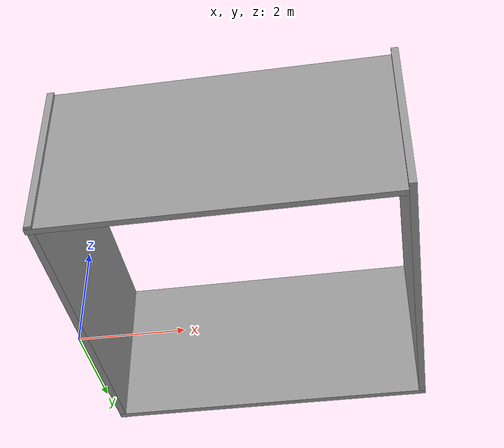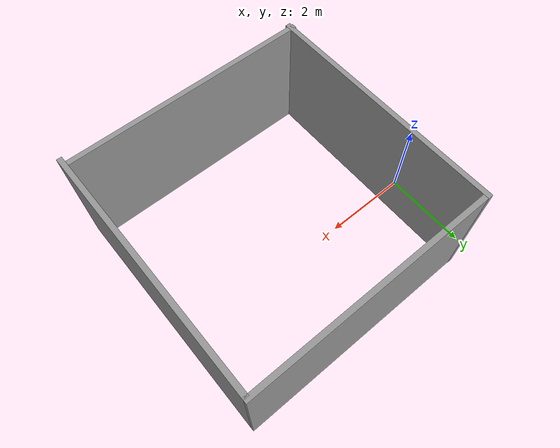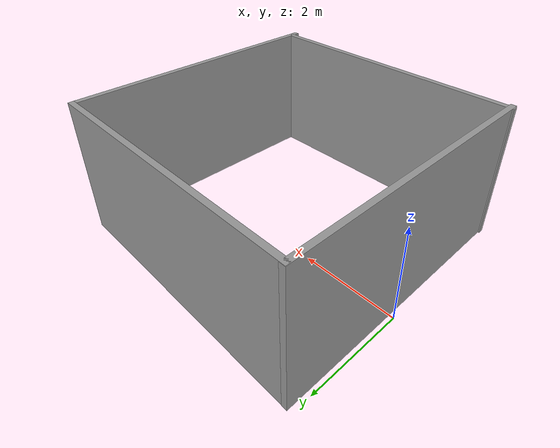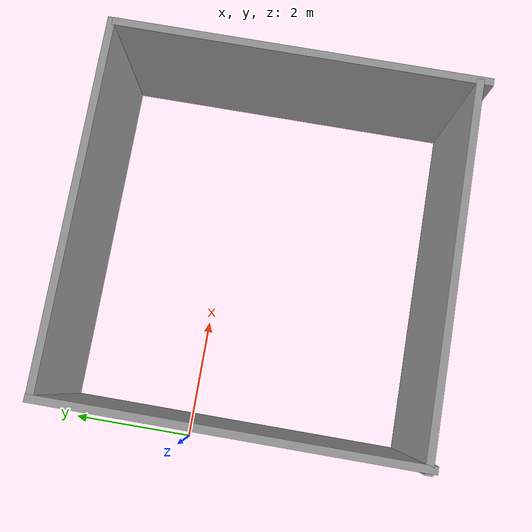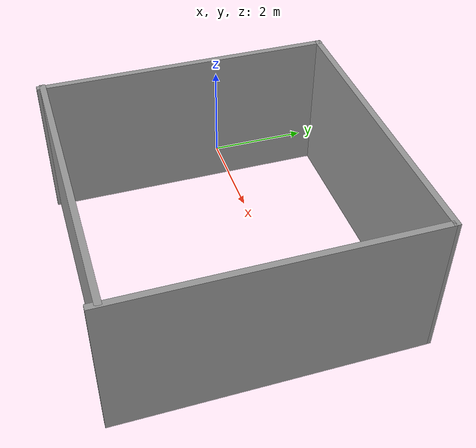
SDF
<?xml version='1.0'?>
<sdf version='1.7'>
  <model name='6x6x3_box_empty'>
    <link name='link'>
      <inertial>
        <mass>0.327052</mass>
        <inertia>
          <ixx>0.22175</ixx>
          <ixy>0</ixy>
          <ixz>0</ixz>
          <iyy>0.194905</iyy>
          <iyz>0</iyz>
          <izz>0.0276628</izz>
        </inertia>
        <pose>0 0 0 0 -0 0</pose>
      </inertial>
      <self_collide>0</self_collide>
      <enable_wind>0</enable_wind>
      <kinematic>0</kinematic>
      <pose>0.32125 -0.760576 1.08096 0 -0 0</pose>
      <gravity>1</gravity>
      <visual name='visual'>
        <geometry>
          <box>
            <size>0.122429 6 3</size>
          </box>
        </geometry>
        <material>
          <script>
            <name>Gazebo/Grey</name>
            <uri>file://media/materials/scripts/gazebo.material</uri>
          </script>
          <shader type='pixel'>
            <normal_map>__default__</normal_map>
          </shader>
          <ambient>0.3 0.3 0.3 1</ambient>
          <diffuse>0.7 0.7 0.7 1</diffuse>
          <specular>0.01 0.01 0.01 1</specular>
          <emissive>0 0 0 1</emissive>
        </material>
        <pose>0 0 0 0 -0 0</pose>
        <transparency>0</transparency>
        <cast_shadows>1</cast_shadows>
      </visual>
      <collision name='collision'>
        <laser_retro>0</laser_retro>
        <max_contacts>10</max_contacts>
        <pose>0 0 0 0 -0 0</pose>
        <geometry>
          <box>
            <size>0.122429 6 3</size>
          </box>
        </geometry>
        <surface>
          <friction>
            <ode>
              <mu>1</mu>
              <mu2>1</mu2>
              <fdir1>0 0 0</fdir1>
              <slip1>0</slip1>
              <slip2>0</slip2>
            </ode>
            <torsional>
              <coefficient>1</coefficient>
              <patch_radius>0</patch_radius>
              <surface_radius>0</surface_radius>
              <use_patch_radius>1</use_patch_radius>
              <ode>
                <slip>0</slip>
              </ode>
            </torsional>
          </friction>
          <bounce>
            <restitution_coefficient>0</restitution_coefficient>
            <threshold>1e+06</threshold>
          </bounce>
          <contact>
            <collide_without_contact>0</collide_without_contact>
            <collide_without_contact_bitmask>1</collide_without_contact_bitmask>
            <collide_bitmask>1</collide_bitmask>
            <ode>
              <soft_cfm>0</soft_cfm>
              <soft_erp>0.2</soft_erp>
              <kp>1e+13</kp>
              <kd>1</kd>
              <max_vel>0.01</max_vel>
              <min_depth>0</min_depth>
            </ode>
            <bullet>
              <split_impulse>1</split_impulse>
              <split_impulse_penetration_threshold>-0.01</split_impulse_penetration_threshold>
              <soft_cfm>0</soft_cfm>
              <soft_erp>0.2</soft_erp>
              <kp>1e+13</kp>
              <kd>1</kd>
            </bullet>
          </contact>
        </surface>
      </collision>
    </link>
    <link name='link_clone'>
      <inertial>
        <mass>0.327052</mass>
        <inertia>
          <ixx>0.22175</ixx>
          <ixy>0</ixy>
          <ixz>0</ixz>
          <iyy>0.194905</iyy>
          <iyz>0</iyz>
          <izz>0.0276628</izz>
        </inertia>
        <pose>0 0 0 0 -0 0</pose>
      </inertial>
      <self_collide>0</self_collide>
      <enable_wind>0</enable_wind>
      <kinematic>0</kinematic>
      <pose>3.26919 2.17247 1.08096 0 -0 1.5708</pose>
      <gravity>1</gravity>
      <visual name='visual'>
        <geometry>
          <box>
            <size>0.122429 6 3</size>
          </box>
        </geometry>
        <material>
          <script>
            <name>Gazebo/Grey</name>
            <uri>file://media/materials/scripts/gazebo.material</uri>
          </script>
          <shader type='pixel'>
            <normal_map>__default__</normal_map>
          </shader>
          <ambient>0.3 0.3 0.3 1</ambient>
          <diffuse>0.7 0.7 0.7 1</diffuse>
          <specular>0.01 0.01 0.01 1</specular>
          <emissive>0 0 0 1</emissive>
        </material>
        <pose>0 0 0 0 -0 0</pose>
        <transparency>0</transparency>
        <cast_shadows>1</cast_shadows>
      </visual>
      <collision name='collision'>
        <laser_retro>0</laser_retro>
        <max_contacts>10</max_contacts>
        <pose>0 0 0 0 -0 0</pose>
        <geometry>
          <box>
            <size>0.122429 6 3</size>
          </box>
        </geometry>
        <surface>
          <friction>
            <ode>
              <mu>1</mu>
              <mu2>1</mu2>
              <fdir1>0 0 0</fdir1>
              <slip1>0</slip1>
              <slip2>0</slip2>
            </ode>
            <torsional>
              <coefficient>1</coefficient>
              <patch_radius>0</patch_radius>
              <surface_radius>0</surface_radius>
              <use_patch_radius>1</use_patch_radius>
              <ode>
                <slip>0</slip>
              </ode>
            </torsional>
          </friction>
          <bounce>
            <restitution_coefficient>0</restitution_coefficient>
            <threshold>1e+06</threshold>
          </bounce>
          <contact>
            <collide_without_contact>0</collide_without_contact>
            <collide_without_contact_bitmask>1</collide_without_contact_bitmask>
            <collide_bitmask>1</collide_bitmask>
            <ode>
              <soft_cfm>0</soft_cfm>
              <soft_erp>0.2</soft_erp>
              <kp>1e+13</kp>
              <kd>1</kd>
              <max_vel>0.01</max_vel>
              <min_depth>0</min_depth>
            </ode>
            <bullet>
              <split_impulse>1</split_impulse>
              <split_impulse_penetration_threshold>-0.01</split_impulse_penetration_threshold>
              <soft_cfm>0</soft_cfm>
              <soft_erp>0.2</soft_erp>
              <kp>1e+13</kp>
              <kd>1</kd>
            </bullet>
          </contact>
        </surface>
      </collision>
    </link>
    <link name='link_clone_0'>
      <inertial>
        <mass>0.327052</mass>
        <inertia>
          <ixx>0.22175</ixx>
          <ixy>0</ixy>
          <ixz>0</ixz>
          <iyy>0.194905</iyy>
          <iyz>0</iyz>
          <izz>0.0276628</izz>
        </inertia>
        <pose>0 0 0 0 -0 0</pose>
      </inertial>
      <self_collide>0</self_collide>
      <enable_wind>0</enable_wind>
      <kinematic>0</kinematic>
      <pose>6.20927 -0.841978 1.08096 0 -0 0</pose>
      <gravity>1</gravity>
      <visual name='visual'>
        <geometry>
          <box>
            <size>0.122429 6 3</size>
          </box>
        </geometry>
        <material>
          <script>
            <name>Gazebo/Grey</name>
            <uri>file://media/materials/scripts/gazebo.material</uri>
          </script>
          <shader type='pixel'>
            <normal_map>__default__</normal_map>
          </shader>
          <ambient>0.3 0.3 0.3 1</ambient>
          <diffuse>0.7 0.7 0.7 1</diffuse>
          <specular>0.01 0.01 0.01 1</specular>
          <emissive>0 0 0 1</emissive>
        </material>
        <pose>0 0 0 0 -0 0</pose>
        <transparency>0</transparency>
        <cast_shadows>1</cast_shadows>
      </visual>
      <collision name='collision'>
        <laser_retro>0</laser_retro>
        <max_contacts>10</max_contacts>
        <pose>0 0 0 0 -0 0</pose>
        <geometry>
          <box>
            <size>0.122429 6 3</size>
          </box>
        </geometry>
        <surface>
          <friction>
            <ode>
              <mu>1</mu>
              <mu2>1</mu2>
              <fdir1>0 0 0</fdir1>
              <slip1>0</slip1>
              <slip2>0</slip2>
            </ode>
            <torsional>
              <coefficient>1</coefficient>
              <patch_radius>0</patch_radius>
              <surface_radius>0</surface_radius>
              <use_patch_radius>1</use_patch_radius>
              <ode>
                <slip>0</slip>
              </ode>
            </torsional>
          </friction>
          <bounce>
            <restitution_coefficient>0</restitution_coefficient>
            <threshold>1e+06</threshold>
          </bounce>
          <contact>
            <collide_without_contact>0</collide_without_contact>
            <collide_without_contact_bitmask>1</collide_without_contact_bitmask>
            <collide_bitmask>1</collide_bitmask>
            <ode>
              <soft_cfm>0</soft_cfm>
              <soft_erp>0.2</soft_erp>
              <kp>1e+13</kp>
              <kd>1</kd>
              <max_vel>0.01</max_vel>
              <min_depth>0</min_depth>
            </ode>
            <bullet>
              <split_impulse>1</split_impulse>
              <split_impulse_penetration_threshold>-0.01</split_impulse_penetration_threshold>
              <soft_cfm>0</soft_cfm>
              <soft_erp>0.2</soft_erp>
              <kp>1e+13</kp>
              <kd>1</kd>
            </bullet>
          </contact>
        </surface>
      </collision>
    </link>
    <link name='link_clone_clone'>
      <inertial>
        <mass>0.327052</mass>
        <inertia>
          <ixx>0.22175</ixx>
          <ixy>0</ixy>
          <ixz>0</ixz>
          <iyy>0.194905</iyy>
          <iyz>0</iyz>
          <izz>0.0276628</izz>
        </inertia>
        <pose>0 0 0 0 -0 0</pose>
      </inertial>
      <self_collide>0</self_collide>
      <enable_wind>0</enable_wind>
      <kinematic>0</kinematic>
      <pose>3.23131 -3.63596 1.08096 0 -0 1.5708</pose>
      <gravity>1</gravity>
      <visual name='visual'>
        <geometry>
          <box>
            <size>0.122429 6 3</size>
          </box>
        </geometry>
        <material>
          <script>
            <name>Gazebo/Grey</name>
            <uri>file://media/materials/scripts/gazebo.material</uri>
          </script>
          <shader type='pixel'>
            <normal_map>__default__</normal_map>
          </shader>
          <ambient>0.3 0.3 0.3 1</ambient>
          <diffuse>0.7 0.7 0.7 1</diffuse>
          <specular>0.01 0.01 0.01 1</specular>
          <emissive>0 0 0 1</emissive>
        </material>
        <pose>0 0 0 0 -0 0</pose>
        <transparency>0</transparency>
        <cast_shadows>1</cast_shadows>
      </visual>
      <collision name='collision'>
        <laser_retro>0</laser_retro>
        <max_contacts>10</max_contacts>
        <pose>0 0 0 0 -0 0</pose>
        <geometry>
          <box>
            <size>0.122429 6 3</size>
          </box>
        </geometry>
        <surface>
          <friction>
            <ode>
              <mu>1</mu>
              <mu2>1</mu2>
              <fdir1>0 0 0</fdir1>
              <slip1>0</slip1>
              <slip2>0</slip2>
            </ode>
            <torsional>
              <coefficient>1</coefficient>
              <patch_radius>0</patch_radius>
              <surface_radius>0</surface_radius>
              <use_patch_radius>1</use_patch_radius>
              <ode>
                <slip>0</slip>
              </ode>
            </torsional>
          </friction>
          <bounce>
            <restitution_coefficient>0</restitution_coefficient>
            <threshold>1e+06</threshold>
          </bounce>
          <contact>
            <collide_without_contact>0</collide_without_contact>
            <collide_without_contact_bitmask>1</collide_without_contact_bitmask>
            <collide_bitmask>1</collide_bitmask>
            <ode>
              <soft_cfm>0</soft_cfm>
              <soft_erp>0.2</soft_erp>
              <kp>1e+13</kp>
              <kd>1</kd>
              <max_vel>0.01</max_vel>
              <min_depth>0</min_depth>
            </ode>
            <bullet>
              <split_impulse>1</split_impulse>
              <split_impulse_penetration_threshold>-0.01</split_impulse_penetration_threshold>
              <soft_cfm>0</soft_cfm>
              <soft_erp>0.2</soft_erp>
              <kp>1e+13</kp>
              <kd>1</kd>
            </bullet>
          </contact>
        </surface>
      </collision>
    </link>
    <joint name='link_JOINT_4' type='fixed'>
      <parent>link</parent>
      <child>link_clone_clone</child>
      <pose>0 0 0 0 -0 0</pose>
      <physics>
        <ode>
          <limit>
            <cfm>0</cfm>
            <erp>0.2</erp>
          </limit>
          <suspension>
            <cfm>0</cfm>
            <erp>0.2</erp>
          </suspension>
        </ode>
      </physics>
    </joint>
    <joint name='link_JOINT_5' type='fixed'>
      <parent>link</parent>
      <child>link_clone</child>
      <pose>0 0 0 0 -0 0</pose>
      <physics>
        <ode>
          <limit>
            <cfm>0</cfm>
            <erp>0.2</erp>
          </limit>
          <suspension>
            <cfm>0</cfm>
            <erp>0.2</erp>
          </suspension>
        </ode>
      </physics>
    </joint>
    <joint name='link_JOINT_6' type='fixed'>
      <parent>link</parent>
      <child>link_clone_0</child>
      <pose>0 0 0 0 -0 0</pose>
      <physics>
        <ode>
          <limit>
            <cfm>0</cfm>
            <erp>0.2</erp>
          </limit>
          <suspension>
            <cfm>0</cfm>
            <erp>0.2</erp>
          </suspension>
        </ode>
      </physics>
    </joint>
    <joint name='link_clone_0_JOINT_9' type='fixed'>
      <parent>link_clone_0</parent>
      <child>link</child>
      <pose>0 0 0 0 -0 0</pose>
      <physics>
        <ode>
          <limit>
            <cfm>0</cfm>
            <erp>0.2</erp>
          </limit>
          <suspension>
            <cfm>0</cfm>
            <erp>0.2</erp>
          </suspension>
        </ode>
      </physics>
    </joint>
    <joint name='link_clone_JOINT_7' type='fixed'>
      <parent>link_clone</parent>
      <child>link_clone_0</child>
      <pose>0 0 0 0 -0 0</pose>
      <physics>
        <ode>
          <limit>
            <cfm>0</cfm>
            <erp>0.2</erp>
          </limit>
          <suspension>
            <cfm>0</cfm>
            <erp>0.2</erp>
          </suspension>
        </ode>
      </physics>
    </joint>
    <joint name='link_clone_JOINT_8' type='fixed'>
      <parent>link_clone</parent>
      <child>link_clone_clone</child>
      <pose>0 0 0 0 -0 0</pose>
      <physics>
        <ode>
          <limit>
            <cfm>0</cfm>
            <erp>0.2</erp>
          </limit>
          <suspension>
            <cfm>0</cfm>
            <erp>0.2</erp>
          </suspension>
        </ode>
      </physics>
    </joint>
    <joint name='link_clone_clone_JOINT_3' type='fixed'>
      <parent>link_clone_clone</parent>
      <child>link_clone_0</child>
      <pose>0 0 0 0 -0 0</pose>
      <physics>
        <ode>
          <limit>
            <cfm>0</cfm>
            <erp>0.2</erp>
          </limit>
          <suspension>
            <cfm>0</cfm>
            <erp>0.2</erp>
          </suspension>
        </ode>
      </physics>
    </joint>
    <static>1</static>
    <allow_auto_disable>1</allow_auto_disable>
  </model>
</sdf>
